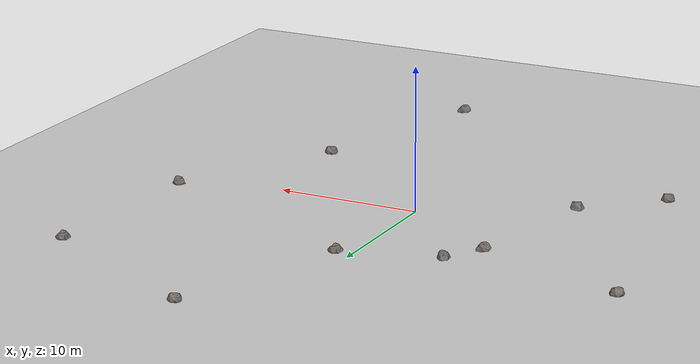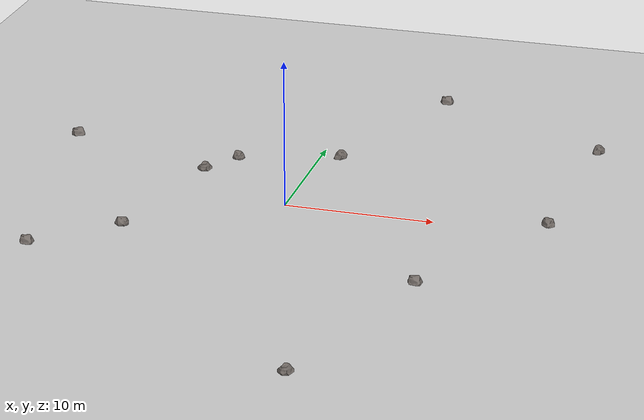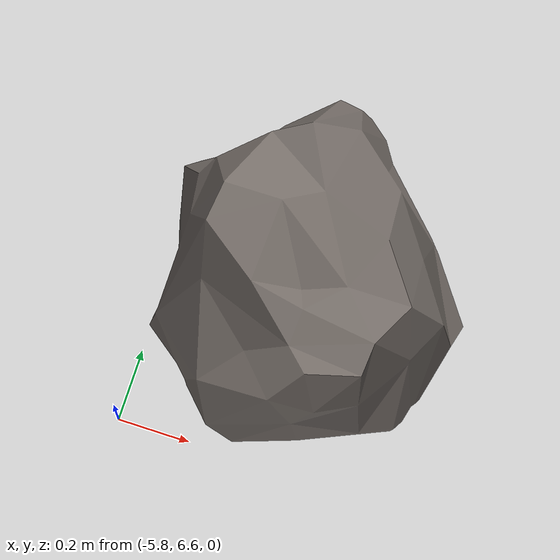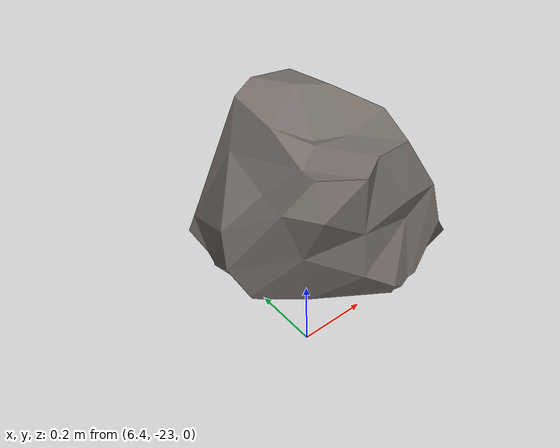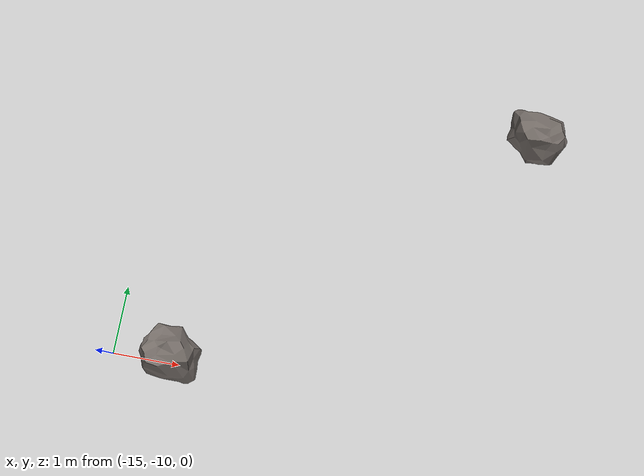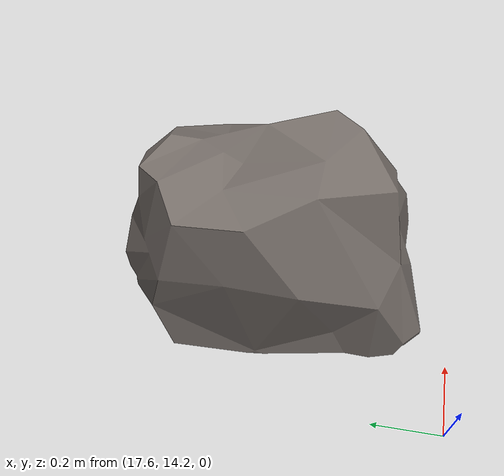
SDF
<sdf version="1.6">
 <world name="forest_50m">
  <include><uri>model://ground_plane</uri></include>
  <include><uri>model://sun</uri></include>
  <include>
   <uri>model://Falling Rock 2</uri>
   <name>rock_big_2</name>
   <pose>-14.149 -9.864 0 0 0 0.546</pose>
  </include>
  <include>
   <uri>model://Falling Rock 2</uri>
   <name>rock_big_10</name>
   <pose>-9.314 -5.573 0 0 0 3.626</pose>
  </include>
  <include>
   <uri>model://Falling Rock 2</uri>
   <name>rock_big_18</name>
   <pose>-7.040 4.594 0 0 0 1.976</pose>
  </include>
  <include>
   <uri>model://Falling Rock 2</uri>
   <name>rock_big_19</name>
   <pose>-5.440 7.124 0 0 0 2.882</pose>
  </include>
  <include>
   <uri>model://Falling Rock 2</uri>
   <name>rock_big_31</name>
   <pose>1.270 9.045 0 0 0 5.223</pose>
  </include>
  <include>
   <uri>model://Falling Rock 2</uri>
   <name>rock_big_39</name>
   <pose>11.024 -9.040 0 0 0 0.445</pose>
  </include>
  <include>
   <uri>model://Falling Rock 2</uri>
   <name>rock_big_48</name>
   <pose>-17.561 8.217 0 0 0 1.044</pose>
  </include>
  <include>
   <uri>model://Falling Rock 2</uri>
   <name>rock_big_58</name>
   <pose>6.801 -22.559 0 0 0 1.880</pose>
  </include>
  <include>
   <uri>model://Falling Rock 2</uri>
   <name>rock_big_60</name>
   <pose>5.940 21.108 0 0 0 0.580</pose>
  </include>
  <include>
   <uri>model://Falling Rock 2</uri>
   <name>rock_big_66</name>
   <pose>17.204 1.735 0 0 0 6.131</pose>
  </include>
  <include>
   <uri>model://Falling Rock 2</uri>
   <name>rock_big_68</name>
   <pose>18.127 14.740 0 0 0 5.426</pose>
  </include>
 </world>
</sdf>

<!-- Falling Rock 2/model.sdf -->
<sdf version="1.6">
  <model name="falling_rock2">
    <link name="base_link">
      <inertial>
        <pose>-0.014732 -0.014451 0.003710 0 0 0</pose>
        <mass>646.508</mass>
        <inertia>
          <ixx>49.62</ixx>
          <ixy>4.08</ixy>
          <ixz>-0.324</ixz>
          <iyy>46.472</iyy>
          <iyz>-3.926</iyz>
          <izz>51.062</izz>
        </inertia>
      </inertial>
      <collision name="collision">
        <geometry>
          <mesh>
            <uri>meshes/FallingRock02_Collider.dae</uri>
          </mesh>
        </geometry>
      </collision>

      <visual name="visual">
        <geometry>
          <mesh>
            <uri>meshes/FallingRock02.dae</uri>
          </mesh>
        </geometry>
        <!-- Keep material local-only to avoid unresolved model:// URIs -->
        <material>
          <ambient>0.38 0.35 0.33 1.0</ambient>
          <diffuse>0.45 0.42 0.40 1.0</diffuse>
          <specular>0.08 0.08 0.08 1.0</specular>
        </material>
      </visual>
    </link>
  </model>
</sdf>
